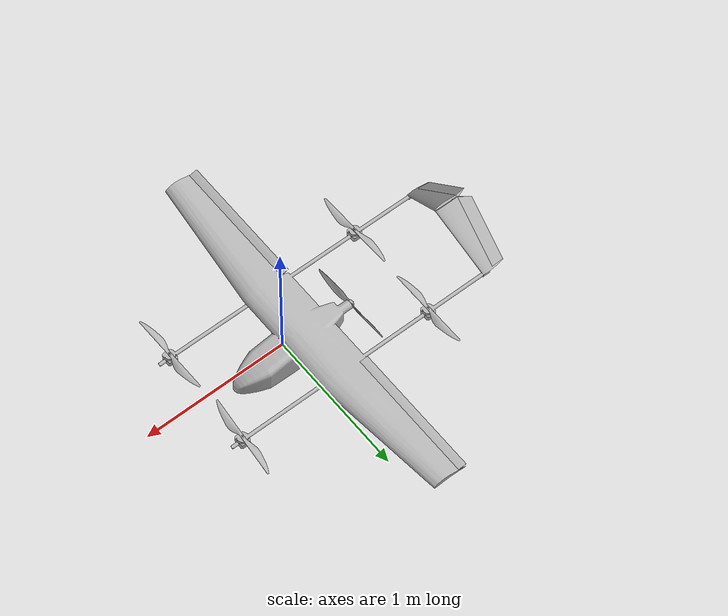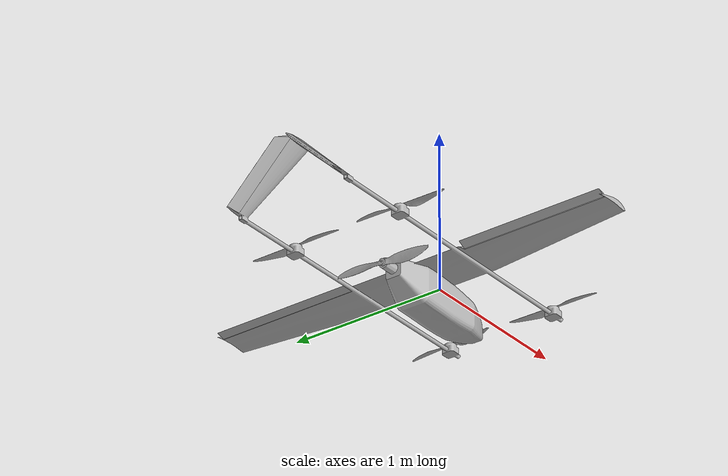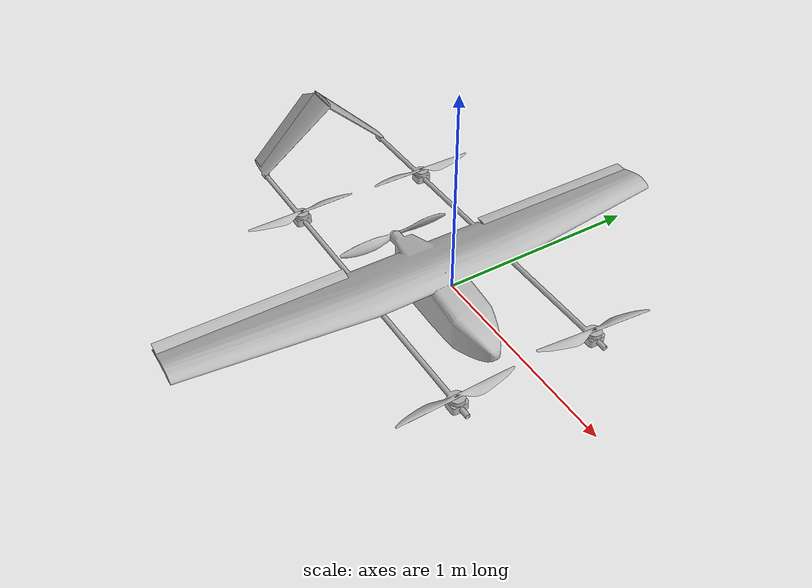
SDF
<?xml version="1.0"?>
<sdf version='1.6'>
  <model name='gauthali_vtol'>
    <link name='base_link'>
      <pose frame=''>0 0 0 0 -0 0</pose>
      <inertial>
        <pose frame=''>-0.119905 8e-06 -0.055006 0 -0 0</pose>
        <mass>9.00568</mass>
        <inertia>
          <ixx>0.323867</ixx>
          <ixy>7.81346e-06</ixy>
          <ixz>0.012841</ixz>
          <iyy>0.240986</iyy>
          <iyz>-1.50384e-06</iyz>
          <izz>0.516377</izz>
        </inertia>
      </inertial>
      <collision name='base_link_collision'>
        <pose frame=''>0 0 0 0 -0 0</pose>
        <geometry>
          <mesh>
            <scale>1 1 1</scale>
            <uri>model://gauthali_vtol/meshes/base_link.STL</uri>
          </mesh>
        </geometry>
      </collision>
      <visual name='base_link_visual'>
        <pose frame=''>0 0 0 0 -0 0</pose>
        <geometry>
          <mesh>
            <scale>1 1 1</scale>
            <uri>model://gauthali_vtol/meshes/base_link.STL</uri>
          </mesh>
        </geometry>
      </visual>
    </link>
    <link name='gauthali_11/imu_link'>
      <inertial>
        <pose>0 0 0 0 0 0</pose>
        <mass>0.15</mass>
        <inertia>
          <ixx>0.00001</ixx>
          <ixy>0</ixy>
          <ixz>0</ixz>
          <iyy>0.00002</iyy>
          <iyz>0</iyz>
          <izz>0.00002</izz>
        </inertia>
      </inertial>
      <sensor name="imu_sensor" type="imu">
        <pose>0 0 0 3.141593 0 0</pose>
        <always_on>1</always_on>
        <update_rate>1000.0</update_rate>
      </sensor>
    </link>
    <joint name='gauthali_11/imu_joint' type='revolute'>
      <child>gauthali_11/imu_link</child>
      <parent>base_link</parent>
      <axis>
        <xyz>0 0 1</xyz>
        <limit>
          <lower>0</lower>
          <upper>0</upper>
          <effort>0</effort>
          <velocity>0</velocity>
        </limit>
        <dynamics>
          <damping>1.0</damping>
        </dynamics>
        <use_parent_model_frame>1</use_parent_model_frame>
      </axis>
      <physics>
        <ode>
          <implicit_spring_damper>1</implicit_spring_damper>
        </ode>
      </physics>
    </joint>
    <link name='left_aileron'>
      <pose frame=''>-0.28599 0.38 0.006356 0 -0 0</pose>
      <inertial>
        <pose frame=''>-0.019251 0.45424 -0.000708 0 -0 0</pose>
        <mass>0.0090384</mass>
        <inertia>
          <ixx>0.0006329</ixx>
          <ixy>3.2735e-07</ixy>
          <ixz>2.5966e-07</ixz>
          <iyy>1.7477e-06</iyy>
          <iyz>3.2316e-07</iyz>
          <izz>0.00063444</izz>
        </inertia>
      </inertial>
      <collision name='left_aileron_collision'>
        <pose frame=''>0 0 0 0 -0 0</pose>
        <geometry>
          <mesh>
            <scale>1 1 1</scale>
            <uri>model://gauthali_vtol/meshes/left_aileron.STL</uri>
          </mesh>
        </geometry>
      </collision>
      <visual name='left_aileron_visual'>
        <pose frame=''>0 0 0 0 -0 0</pose>
        <geometry>
          <mesh>
            <scale>1 1 1</scale>
            <uri>model://gauthali_vtol/meshes/left_aileron.STL</uri>
          </mesh>
        </geometry>
      </visual>
    </link>
    <joint name='left_aileron_joint' type='revolute'>
      <child>left_aileron</child>
      <parent>base_link</parent>
      <axis>
        <xyz>0 1 0</xyz>
        <limit>
          <lower>-0.53</lower>
          <upper>0.53</upper>
          <effort>-1</effort>
          <velocity>-1</velocity>
        </limit>
        <dynamics>
          <spring_reference>0</spring_reference>
          <spring_stiffness>0</spring_stiffness>
          <damping>0.004</damping>
        </dynamics>
        <use_parent_model_frame>1</use_parent_model_frame>
      </axis>
      <physics>
          <ode>
            <implicit_spring_damper>1</implicit_spring_damper>
          </ode>
      </physics>
    </joint>
    <link name='left_ruddervator'>
      <pose frame=''>-1.3278 0.17783 0.17783 2.3562 0 -3.14159</pose>
      <inertial>
        <pose frame=''>0.029088 -0.007151 0.008477 0 -0 0</pose>
        <mass>0.011825</mass>
        <inertia>
          <ixx>0.0002244</ixx>
          <ixy>3.7585e-10</ixy>
          <ixz>-1.8506e-06</ixz>
          <iyy>0.00022971</iyy>
          <iyz>-5.9334e-09</iyz>
          <izz>5.7467e-06</izz>
        </inertia>
      </inertial>
      <collision name='left_ruddervator_collision'>
        <pose frame=''>0 0 0 0 -0 0</pose>
        <geometry>
          <mesh>
            <scale>1 1 1</scale>
            <uri>model://gauthali_vtol/meshes/left_ruddervator.STL</uri>
          </mesh>
        </geometry>
      </collision>
      <visual name='left_ruddervator_visual'>
        <pose frame=''>0 0 0 0 -0 0</pose>
        <geometry>
          <mesh>
            <scale>1 1 1</scale>
            <uri>model://gauthali_vtol/meshes/left_ruddervator.STL</uri>
          </mesh>
        </geometry>
      </visual>
    </link>
    <joint name='left_ruddervator_joint' type='revolute'>
      <child>left_ruddervator</child>
      <parent>base_link</parent>
      <axis>
        <xyz>-5e-06 0.707103 -0.707111</xyz>
        <limit>
          <lower>-0.53</lower>
          <upper>0.53</upper>
          <effort>-1</effort>
          <velocity>-1</velocity>
        </limit>
        <dynamics>
          <spring_reference>0</spring_reference>
          <spring_stiffness>0</spring_stiffness>
          <damping>0.004</damping>
        </dynamics>
        <use_parent_model_frame>1</use_parent_model_frame>
      </axis>
      <physics>
          <ode>
            <implicit_spring_damper>1</implicit_spring_damper>
          </ode>
      </physics>
    </joint>
    <link name='right_aileron'>
      <pose frame=''>-0.28599 -0.38 0.006356 0 -0 0</pose>
      <inertial>
        <pose frame=''>-0.019048 -0.45424 0.002877 0 -0 0</pose>
        <mass>0.0090385</mass>
        <inertia>
          <ixx>0.00063306</ixx>
          <ixy>-3.8157e-07</ixy>
          <ixz>5.2128e-07</ixz>
          <iyy>1.7477e-06</iyy>
          <iyz>-2.5684e-07</iyz>
          <izz>0.00063429</izz>
        </inertia>
      </inertial>
      <collision name='right_aileron_collision'>
        <pose frame=''>0 0 0 0 -0 0</pose>
        <geometry>
          <mesh>
            <scale>1 1 1</scale>
            <uri>model://gauthali_vtol/meshes/right_aileron.STL</uri>
          </mesh>
        </geometry>
      </collision>
      <visual name='right_aileron_visual'>
        <pose frame=''>0 0 0 0 -0 0</pose>
        <geometry>
          <mesh>
            <scale>1 1 1</scale>
            <uri>model://gauthali_vtol/meshes/right_aileron.STL</uri>
          </mesh>
        </geometry>
      </visual>
    </link>
    <joint name='right_aileron_joint' type='revolute'>
      <child>right_aileron</child>
      <parent>base_link</parent>
      <axis>
        <xyz>0 1 0</xyz>
        <limit>
          <lower>-0.53</lower>
          <upper>0.53</upper>
          <effort>1</effort>
          <velocity>1</velocity>
        </limit>
        <dynamics>
          <spring_reference>0</spring_reference>
          <spring_stiffness>0</spring_stiffness>
          <damping>0.004</damping>
        </dynamics>
        <use_parent_model_frame>1</use_parent_model_frame>
      </axis>
      <physics>
          <ode>
            <implicit_spring_damper>1</implicit_spring_damper>
          </ode>
        </physics>
    </joint>
    <link name='right_ruddervator'>
      <pose frame=''>-1.3278 -0.17783 0.17783 2.3562 0 -3.14159</pose>
      <inertial>
        <pose frame=''>0.029088 -0.008476 0.007151 0 -0 0</pose>
        <mass>0.011825</mass>
        <inertia>
          <ixx>0.00022439</ixx>
          <ixy>1.8506e-06</ixy>
          <ixz>-3.6772e-10</ixz>
          <iyy>5.7467e-06</iyy>
          <iyz>-5.9487e-09</iyz>
          <izz>0.00022971</izz>
        </inertia>
      </inertial>
      <collision name='right_ruddervator_collision'>
        <pose frame=''>0 0 0 0 -0 0</pose>
        <geometry>
          <mesh>
            <scale>1 1 1</scale>
            <uri>model://gauthali_vtol/meshes/right_ruddervator.STL</uri>
          </mesh>
        </geometry>
      </collision>
      <visual name='right_ruddervator_visual'>
        <pose frame=''>0 0 0 0 -0 0</pose>
        <geometry>
          <mesh>
            <scale>1 1 1</scale>
            <uri>model://gauthali_vtol/meshes/right_ruddervator.STL</uri>
          </mesh>
        </geometry>
      </visual>
    </link>
    <joint name='right_ruddervator_joint' type='revolute'>
      <child>right_ruddervator</child>
      <parent>base_link</parent>
      <axis>
        <xyz>-5e-06 0.707111 0.707103</xyz>
        <limit>
          <lower>-0.53</lower>
          <upper>0.53</upper>
          <effort>-1</effort>
          <velocity>-1</velocity>
        </limit>
        <dynamics>
          <spring_reference>0</spring_reference>
          <spring_stiffness>0</spring_stiffness>
          <damping>0.004</damping>
        </dynamics>
        <use_parent_model_frame>1</use_parent_model_frame>
      </axis>
      <physics>
          <ode>
            <implicit_spring_damper>1</implicit_spring_damper>
          </ode>
      </physics>
    </joint>
    <link name='rotor_0'>
      <pose frame=''>0.564 -0.35355 0.006413 0 -0 0</pose>
      <inertial>
        <pose frame=''>0.007 -0 0.015147 0 -0 0</pose>
        <mass>0.067297</mass>
        <inertia>
          <ixx>0.0014438</ixx>
          <ixy>-4.626e-05</ixy>
          <ixz>-2.2886e-12</ixz>
          <iyy>1.0096e-05</iyy>
          <iyz>1.3106e-11</iyz>
          <izz>0.0014525</izz>
        </inertia>
      </inertial>
      <collision name='rotor_0_collision'>
        <pose frame=''>0 0 0 0 -0 0</pose>
        <geometry>
          <mesh>
            <scale>1 1 1</scale>
            <uri>model://gauthali_vtol/meshes/rotor_0.STL</uri>
          </mesh>
        </geometry>
      </collision>
      <visual name='rotor_0_visual'>
        <pose frame=''>0 0 0 0 -0 0</pose>
        <geometry>
          <mesh>
            <scale>1 1 1</scale>
            <uri>model://gauthali_vtol/meshes/rotor_0.STL</uri>
          </mesh>
        </geometry>
      </visual>
      <gravity>1</gravity>
      <velocity_decay/>
      <self_collide>0</self_collide>
    </link>
    <joint name='rotor_0_joint' type='revolute'>
      <child>rotor_0</child>
      <parent>base_link</parent>
      <axis>
        <xyz>0 0 1</xyz>
        <limit>
          <lower>-1e+16</lower>
          <upper>1e+16</upper>
        </limit>
        <dynamics>
          <spring_reference>0</spring_reference>
          <spring_stiffness>0</spring_stiffness>
        </dynamics>
        <use_parent_model_frame>1</use_parent_model_frame>
      </axis>
    </joint>
    <link name='rotor_1'>
      <pose frame=''>-0.836 0.35355 0.006413 0 -0 0</pose>
      <inertial>
        <pose frame=''>0.007 0 0.015147 0 -0 0</pose>
        <mass>0.067297</mass>
        <inertia>
          <ixx>0.0014429</ixx>
          <ixy>-5.8288e-05</ixy>
          <ixz>2.1818e-12</ixz>
          <iyy>1.0974e-05</iyy>
          <iyz>-1.307e-11</iyz>
          <izz>0.0014525</izz>
        </inertia>
      </inertial>
      <collision name='rotor_1_collision'>
        <pose frame=''>0 0 0 0 -0 0</pose>
        <geometry>
          <mesh>
            <scale>1 1 1</scale>
            <uri>model://gauthali_vtol/meshes/rotor_1.STL</uri>
          </mesh>
        </geometry>
      </collision>
      <visual name='rotor_1_visual'>
        <pose frame=''>0 0 0 0 -0 0</pose>
        <geometry>
          <mesh>
            <scale>1 1 1</scale>
            <uri>model://gauthali_vtol/meshes/rotor_1.STL</uri>
          </mesh>
        </geometry>
      </visual>
      <gravity>1</gravity>
      <velocity_decay/>
      <self_collide>0</self_collide>
    </link>
    <joint name='rotor_1_joint' type='revolute'>
      <child>rotor_1</child>
      <parent>base_link</parent>
      <axis>
        <xyz>0 0 1</xyz>
        <limit>
          <lower>-1e+16</lower>
          <upper>1e+16</upper>
        </limit>
        <dynamics>
          <spring_reference>0</spring_reference>
          <spring_stiffness>0</spring_stiffness>
        </dynamics>
        <use_parent_model_frame>1</use_parent_model_frame>
      </axis>
    </joint>
    <link name='rotor_2'>
      <pose frame=''>0.564 0.35355 0.006413 0 -0 0</pose>
      <inertial>
        <pose frame=''>0.007 -0 0.015147 0 -0 0</pose>
        <mass>0.067299</mass>
        <inertia>
          <ixx>0.001442</ixx>
          <ixy>-6.9181e-05</ixy>
          <ixz>1.0898e-12</ixz>
          <iyy>1.1945e-05</iyy>
          <iyz>9.2792e-12</iyz>
          <izz>0.0014526</izz>
        </inertia>
      </inertial>
      <collision name='rotor_2_collision'>
        <pose frame=''>0 0 0 0 -0 0</pose>
        <geometry>
          <mesh>
            <scale>1 1 1</scale>
            <uri>model://gauthali_vtol/meshes/rotor_2.STL</uri>
          </mesh>
        </geometry>
      </collision>
      <visual name='rotor_2_visual'>
        <pose frame=''>0 0 0 0 -0 0</pose>
        <geometry>
          <mesh>
            <scale>1 1 1</scale>
            <uri>model://gauthali_vtol/meshes/rotor_2.STL</uri>
          </mesh>
        </geometry>
      </visual>
      <gravity>1</gravity>
      <velocity_decay/>
      <self_collide>0</self_collide>
    </link>
    <joint name='rotor_2_joint' type='revolute'>
      <child>rotor_2</child>
      <parent>base_link</parent>
      <axis>
        <xyz>0 0 1</xyz>
        <limit>
          <lower>-1e+16</lower>
          <upper>1e+16</upper>
        </limit>
        <dynamics>
          <spring_reference>0</spring_reference>
          <spring_stiffness>0</spring_stiffness>
        </dynamics>
        <use_parent_model_frame>1</use_parent_model_frame>
      </axis>
    </joint>
    <link name='rotor_3'>
      <pose frame=''>-0.836 -0.35355 0.006413 0 -0 0</pose>
      <inertial>
        <pose frame=''>0.007 -0 0.015147 0 -0 0</pose>
        <mass>0.067298</mass>
        <inertia>
          <ixx>0.0014386</ixx>
          <ixy>9.8364e-05</ixy>
          <ixz>3.0747e-13</ixz>
          <iyy>1.5372e-05</iyy>
          <iyz>-5.075e-13</iyz>
          <izz>0.0014526</izz>
        </inertia>
      </inertial>
      <collision name='rotor_3_collision'>
        <pose frame=''>0 0 0 0 -0 0</pose>
        <geometry>
          <mesh>
            <scale>1 1 1</scale>
            <uri>model://gauthali_vtol/meshes/rotor_3.STL</uri>
          </mesh>
        </geometry>
      </collision>
      <visual name='rotor_3_visual'>
        <pose frame=''>0 0 0 0 -0 0</pose>
        <geometry>
          <mesh>
            <scale>1 1 1</scale>
            <uri>model://gauthali_vtol/meshes/rotor_3.STL</uri>
          </mesh>
        </geometry>
      </visual>
      <gravity>1</gravity>
      <velocity_decay/>
      <self_collide>0</self_collide>
    </link>
    <joint name='rotor_3_joint' type='revolute'>
      <child>rotor_3</child>
      <parent>base_link</parent>
      <axis>
        <xyz>0 0 1</xyz>
        <limit>
          <lower>-1e+16</lower>
          <upper>1e+16</upper>
        </limit>
        <dynamics>
          <spring_reference>0</spring_reference>
          <spring_stiffness>0</spring_stiffness>
        </dynamics>
        <use_parent_model_frame>1</use_parent_model_frame>
      </axis>
    </joint>
    <link name='rotor_pusher'>
      <pose frame=''>-0.50018 0 -0.058605 0 -0 0</pose>
      <inertial>
        <pose frame=''>-0.0128 -0 -0 0 -0 0</pose>
        <mass>0.18697</mass>
        <inertia>
          <ixx>0.0045337</ixx>
          <ixy>-3.9749e-11</ixy>
          <ixz>-3.7147e-11</ixz>
          <iyy>5.7998e-05</iyy>
          <iyz>-0.00031475</iyz>
          <izz>0.0044862</izz>
        </inertia>
      </inertial>
      <collision name='rotor_pusher_collision'>
        <pose frame=''>0 0 0 0 -0 0</pose>
        <geometry>
          <mesh>
            <scale>1 1 1</scale>
            <uri>model://gauthali_vtol/meshes/rotor_pusher.STL</uri>
          </mesh>
        </geometry>
      </collision>
      <visual name='rotor_pusher_visual'>
        <pose frame=''>0 0 0 0 -0 0</pose>
        <geometry>
          <mesh>
            <scale>1 1 1</scale>
            <uri>model://gauthali_vtol/meshes/rotor_pusher.STL</uri>
          </mesh>
        </geometry>
      </visual>
      <gravity>1</gravity>
      <velocity_decay/>
      <self_collide>0</self_collide>
    </link>
    <joint name='rotor_pusher_joint' type='revolute'>
      <child>rotor_pusher</child>
      <parent>base_link</parent>
      <axis>
        <xyz>1 0 0</xyz>
        <limit>
          <lower>-1e+16</lower>
          <upper>1e+16</upper>
        </limit>
        <dynamics>
          <spring_reference>0</spring_reference>
          <spring_stiffness>0</spring_stiffness>
        </dynamics>
        <use_parent_model_frame>1</use_parent_model_frame>
      </axis>
    </joint>
    <plugin name="left_wing" filename="libLiftDragPlugin.so">
      <a0>0.156575426451136</a0>
      <cla>5.15662015617741</cla>
      <cda>0.401070456591576</cda>
      <cma>-1.2</cma>
      <alpha_stall>0.357288290430484</alpha_stall>
      <cla_stall>-3.85</cla_stall>
      <cda_stall>-0.9233984055</cda_stall>
      <cma_stall>0</cma_stall>
      <cp>-0.166 0.55 0</cp>
      <area>0.395</area>
      <air_density>1.2041</air_density>
      <forward>1 0 0</forward>
      <upward>0 0 1</upward>
      <link_name>base_link</link_name>
      <control_joint_name>
        left_aileron_joint
      </control_joint_name>
      <control_joint_rad_to_cl>-0.5</control_joint_rad_to_cl>
    </plugin>
    <plugin name="right_wing" filename="libLiftDragPlugin.so">
      <a0>0.156575426451136</a0>
      <cla>5.15662015617741</cla>
      <cda>0.401070456591576</cda>
      <cma>-1.2</cma>
      <alpha_stall>0.357288290430484</alpha_stall>
      <cla_stall>-3.85</cla_stall>
      <cda_stall>-0.9233984055</cda_stall>
      <cma_stall>0</cma_stall>
      <cp>-0.166 -0.55 0</cp>
      <area>0.395</area>
      <air_density>1.2041</air_density>
      <forward>1 0 0</forward>
      <upward>0 0 1</upward>
      <link_name>base_link</link_name>
      <control_joint_name>
        right_aileron_joint
      </control_joint_name>
      <control_joint_rad_to_cl>-0.5</control_joint_rad_to_cl>
    </plugin>
    <plugin name="left_tail" filename="libLiftDragPlugin.so">
      <a0>0</a0>
      <cla>3.10543124960906</cla>
      <cda>0.269290163711487</cda>
      <cma>-1.2</cma>
      <alpha_stall>0.349065850398866</alpha_stall>
      <cla_stall>-3.85</cla_stall>
      <cda_stall>-0.9233984055</cda_stall>
      <cma_stall>0</cma_stall>
      <cp>-1.25 0.1414 0.2021</cp>
      <area>0.075</area>
      <air_density>1.2041</air_density>
      <forward>1 0 0</forward>
      <upward>0 0.707 0.707</upward>
      <link_name>base_link</link_name>
      <control_joint_name>
        left_ruddervator_joint
      </control_joint_name>
      <control_joint_rad_to_cl>-4.0</control_joint_rad_to_cl>
    </plugin>
    <plugin name="right_tail" filename="libLiftDragPlugin.so">
      <a0>0</a0>
      <cla>3.10543124960906</cla>
      <cda>0.269290163711487</cda>
      <cma>-1.2</cma>
      <alpha_stall>0.349065850398866</alpha_stall>
      <cla_stall>-3.85</cla_stall>
      <cda_stall>-0.9233984055</cda_stall>
      <cma_stall>0</cma_stall>
      <cp>-1.25 -0.1414 0.2021</cp>
      <area>0.075</area>
      <air_density>1.2041</air_density>
      <forward>1 0 0</forward>
      <upward>0 -0.707 0.707</upward>
      <link_name>base_link</link_name>
      <control_joint_name>
        right_ruddervator_joint
      </control_joint_name>
      <control_joint_rad_to_cl>-4.0</control_joint_rad_to_cl>
    </plugin>
    <plugin name="pusher_blade_1" filename="libLiftDragPlugin.so">
      <a0>0.30</a0>
      <alpha_stall>1.4</alpha_stall>
      <cla>4.2500</cla>
      <cda>0.10</cda>
      <cma>0.00</cma>
      <cla_stall>-0.025</cla_stall>
      <cda_stall>0.0</cda_stall>
      <cma_stall>0.0</cma_stall>
      <area>0.02</area>
      <air_density>1.2041</air_density>
      <cp>0 0.093 0</cp>
      <forward> 0 1</forward>
      <upward>1 0 0</upward>
      <link_name>rotor_pusher</link_name>
    </plugin>
    <plugin name="pusher_blade_2" filename="libLiftDragPlugin.so">
      <a0>0.30</a0>
      <alpha_stall>1.4</alpha_stall>
      <cla>4.2500</cla>
      <cda>0.10</cda>
      <cma>0.00</cma>
      <cla_stall>-0.025</cla_stall>
      <cda_stall>0.0</cda_stall>
      <cma_stall>0.0</cma_stall>
      <area>0.02</area>
      <air_density>1.2041</air_density>
      <cp>0 -0.093 0</cp>
      <forward>0 0 -1</forward>
      <upward>1 0 0</upward>
      <link_name>rotor_pusher</link_name>
    </plugin>
    <plugin name="rotor_0_blade_1" filename="libLiftDragPlugin.so">
      <a0>0.3</a0>
      <alpha_stall>1.4</alpha_stall>
      <cla>4.2500</cla>
      <cda>0.10</cda>
      <cma>0.00</cma>
      <cda_stall>0.0</cda_stall>
      <cla_stall>-0.025</cla_stall>
      <cma_stall>0.0</cma_stall>
      <area>0.02</area>
      <air_density>1.2041</air_density>
      <cp>0  0.093 0</cp>
      <forward>-1 0 0</forward>
      <upward>0 0 1</upward>
      <link_name>rotor_0</link_name>
    </plugin>
    <plugin name="rotor_0_blade_2" filename="libLiftDragPlugin.so">
      <a0>0.3</a0>
      <alpha_stall>1.4</alpha_stall>
      <cla>4.2500</cla>
      <cda>0.10</cda>
      <cma>0.00</cma>
      <cla_stall>-0.025</cla_stall>
      <cda_stall>0.0</cda_stall>
      <cma_stall>0.0</cma_stall>
      <area>0.02</area>
      <air_density>1.2041</air_density>
       <cp>0 -0.093 0</cp>
      <forward>1 0 0</forward>
      <upward>0 0 1</upward>
      <link_name>rotor_0</link_name>
    </plugin>
 <plugin name="rotor_1_blade_1" filename="libLiftDragPlugin.so">
      <a0>0.3</a0>
      <alpha_stall>1.4</alpha_stall>
      <cla>4.2500</cla>
      <cda>0.10</cda>
      <cma>0.00</cma>
      <cla_stall>-0.025</cla_stall>
      <cda_stall>0.0</cda_stall>
      <cma_stall>0.0</cma_stall>
      <area>0.02</area>
      <air_density>1.2041</air_density>
       <cp>0 0.093 0</cp>
      <forward>-1 0 0</forward>
      <upward>0 0 1</upward>
      <link_name>rotor_1</link_name>
    </plugin>
    <plugin name="rotor_1_blade_2" filename="libLiftDragPlugin.so">
      <a0>0.3</a0>
      <alpha_stall>1.4</alpha_stall>
      <cla>4.2500</cla>
      <cda>0.10</cda>
      <cma>0.00</cma>
      <cla_stall>-0.025</cla_stall>
      <cda_stall>0.0</cda_stall>
      <cma_stall>0.0</cma_stall>
      <area>0.02</area>
      <air_density>1.2041</air_density>
      <cp>0  -0.093 0</cp>
      <forward>1 0 0</forward>
      <upward>0 0 1</upward>
      <link_name>rotor_1</link_name>
    </plugin>
<plugin name="rotor_2_blade_1" filename="libLiftDragPlugin.so">
      <a0>0.3</a0>
      <alpha_stall>1.4</alpha_stall>
      <cla>4.2500</cla>
      <cda>0.10</cda>
      <cma>0.00</cma>
      <cla_stall>-0.025</cla_stall>
      <cda_stall>0.0</cda_stall>
      <cma_stall>0.0</cma_stall>
      <area>0.02</area>
      <air_density>1.2041</air_density>
      <cp>0  0.093 0</cp>
      <forward>1 0 0</forward>
      <upward>0 0 1</upward>
      <link_name>rotor_2</link_name>
    </plugin>
    <plugin name="rotor_2_blade_2" filename="libLiftDragPlugin.so">
      <a0>0.3</a0>
      <alpha_stall>1.4</alpha_stall>
      <cla>4.2500</cla>
      <cda>0.10</cda>
      <cma>0.00</cma>
      <cla_stall>-0.025</cla_stall>
      <cda_stall>0.0</cda_stall>
      <cma_stall>0.0</cma_stall>
      <area>0.02</area>
      <air_density>1.2041</air_density>
       <cp>0 -0.093 0</cp>
      <forward>-1 0 0</forward>
      <upward>0 0 1</upward>
      <link_name>rotor_2</link_name>
    </plugin>
<plugin name="rotor_3_blade_1" filename="libLiftDragPlugin.so">
      <a0>0.3</a0>
      <alpha_stall>1.4</alpha_stall>
      <cla>4.2500</cla>
      <cda>0.10</cda>
      <cma>0.00</cma>
      <cla_stall>-0.025</cla_stall>
      <cda_stall>0.0</cda_stall>
      <cma_stall>0.0</cma_stall>
      <area>0.02</area>
      <air_density>1.2041</air_density>
      <cp>0  0.093 0</cp>
      <forward>1 0 0</forward>
      <upward>0 0 1</upward>
      <link_name>rotor_3</link_name>
    </plugin>
    <plugin name="rotor_3_blade_2" filename="libLiftDragPlugin.so">
      <a0>0.3</a0>
      <alpha_stall>1.4</alpha_stall>
      <cla>4.2500</cla>
      <cda>0.10</cda>
      <cma>0.00</cma>
      <cla_stall>-0.025</cla_stall>
      <cda_stall>0.0</cda_stall>
      <cma_stall>0.0</cma_stall>
      <area>0.02</area>
      <air_density>1.2041</air_density>
       <cp>0 -0.093 0</cp>
      <forward>-1 0 0</forward>
      <upward>0 0 1</upward>
      <link_name>rotor_3</link_name>
    </plugin>
 <plugin name="arducopter_plugin" filename="libArduPilotPlugin.so">
      <fdm_addr>127.0.0.1</fdm_addr>
      <fdm_port_in>9002</fdm_port_in>
      <fdm_port_out>9003</fdm_port_out>
      <!--
          Require by APM :
          Only change model and gazebo from XYZ to XY-Z coordinates
      -->
      <modelXYZToAirplaneXForwardZDown>0 0 0 3.141593 0 0</modelXYZToAirplaneXForwardZDown>
      <gazeboXYZToNED>0 0 0 3.141593 0 0</gazeboXYZToNED>
      <imuName>gauthali_11/imu_link::imu_sensor</imuName>
      <connectionTimeoutMaxCount>5</connectionTimeoutMaxCount>

      <control channel="0">
          <multiplier>1</multiplier>
          <offset>-0.5</offset>
          <type>POSITION</type>
          <p_gain>2.5</p_gain>
          <i_gain>0</i_gain>
          <d_gain>0</d_gain>
          <i_max>0</i_max>
          <i_min>0</i_min>
          <cmd_max>1</cmd_max>
          <cmd_min>-1</cmd_min>
        <jointName>left_aileron_joint</jointName>
      </control>
      <control channel="1">
          <multiplier>1</multiplier>
          <offset>-0.5</offset>
          <type>POSITION</type>
          <p_gain>2.5</p_gain>
          <i_gain>0</i_gain>
          <d_gain>0</d_gain>
          <i_max>0</i_max>
          <i_min>0</i_min>
          <cmd_max>1</cmd_max>
          <cmd_min>-1</cmd_min>
        <jointName>right_aileron_joint</jointName>
      </control>
      <control channel="2">
          <multiplier>1</multiplier>
          <offset>-0.5</offset>
          <type>POSITION</type>
          <p_gain>2.5</p_gain>
          <i_gain>0</i_gain>
          <d_gain>0</d_gain>
          <i_max>0</i_max>
          <i_min>0</i_min>
          <cmd_max>1</cmd_max>
          <cmd_min>-1</cmd_min>
        <jointName>left_ruddervator_joint</jointName>
      </control>
      <control channel="3">
          <multiplier>1</multiplier>
          <offset>-0.5</offset>
          <type>POSITION</type>
          <p_gain>2.5</p_gain>
          <i_gain>0</i_gain>
          <d_gain>0</d_gain>
          <i_max>0</i_max>
          <i_min>0</i_min>
          <cmd_max>1</cmd_max>
          <cmd_min>-1</cmd_min>
        <jointName>right_ruddervator_joint</jointName>
      </control>

      <control channel="4">
        <multiplier>2000</multiplier>
        <offset>0</offset>
        <type>VELOCITY</type>
        <p_gain>10</p_gain>
        <i_gain>0</i_gain>
        <d_gain>0</d_gain>
        <i_max>0</i_max>
        <i_min>0</i_min>
        <cmd_max>20.0</cmd_max>
        <cmd_min>0.0</cmd_min>
        <jointName>rotor_pusher_joint</jointName>
        <rotorVelocitySlowdownSim>1</rotorVelocitySlowdownSim>
      </control>
      <control channel="5">
        <type>VELOCITY</type>
        <offset>0</offset>
        <p_gain>0.20</p_gain>
        <i_gain>0</i_gain>
        <d_gain>0</d_gain>
        <i_max>0</i_max>
        <i_min>0</i_min>
        <cmd_max>2.5</cmd_max>
        <cmd_min>-2.5</cmd_min>
        <jointName>rotor_0_joint</jointName>
        <multiplier>838</multiplier>
        <controlVelocitySlowdownSim>1</controlVelocitySlowdownSim>
      </control>
      <control channel="6">
        <type>VELOCITY</type>
        <offset>0</offset>
        <p_gain>0.20</p_gain>
        <i_gain>0</i_gain>
        <d_gain>0</d_gain>
        <i_max>0</i_max>
        <i_min>0</i_min>
        <cmd_max>2.5</cmd_max>
        <cmd_min>-2.5</cmd_min>
        <jointName>rotor_1_joint</jointName>
        <multiplier>838</multiplier>
        <controlVelocitySlowdownSim>1</controlVelocitySlowdownSim>
      </control>
      <control channel="7">
        <type>VELOCITY</type>
        <offset>0</offset>
        <p_gain>0.20</p_gain>
        <i_gain>0</i_gain>
        <d_gain>0</d_gain>
        <i_max>0</i_max>
        <i_min>0</i_min>
        <cmd_max>2.5</cmd_max>
        <cmd_min>-2.5</cmd_min>
        <jointName>rotor_2_joint</jointName>
        <multiplier>-838</multiplier>
        <controlVelocitySlowdownSim>1</controlVelocitySlowdownSim>
      </control>
      <control channel="8">
        <type>VELOCITY</type>
        <offset>0</offset>
        <p_gain>0.20</p_gain>
        <i_gain>0</i_gain>
        <d_gain>0</d_gain>
        <i_max>0</i_max>
        <i_min>0</i_min>
        <cmd_max>2.5</cmd_max>
        <cmd_min>-2.5</cmd_min>
        <jointName>rotor_3_joint</jointName>
        <multiplier>-838</multiplier>
        <controlVelocitySlowdownSim>1</controlVelocitySlowdownSim>
      </control>
    </plugin>

  </model>
</sdf>
